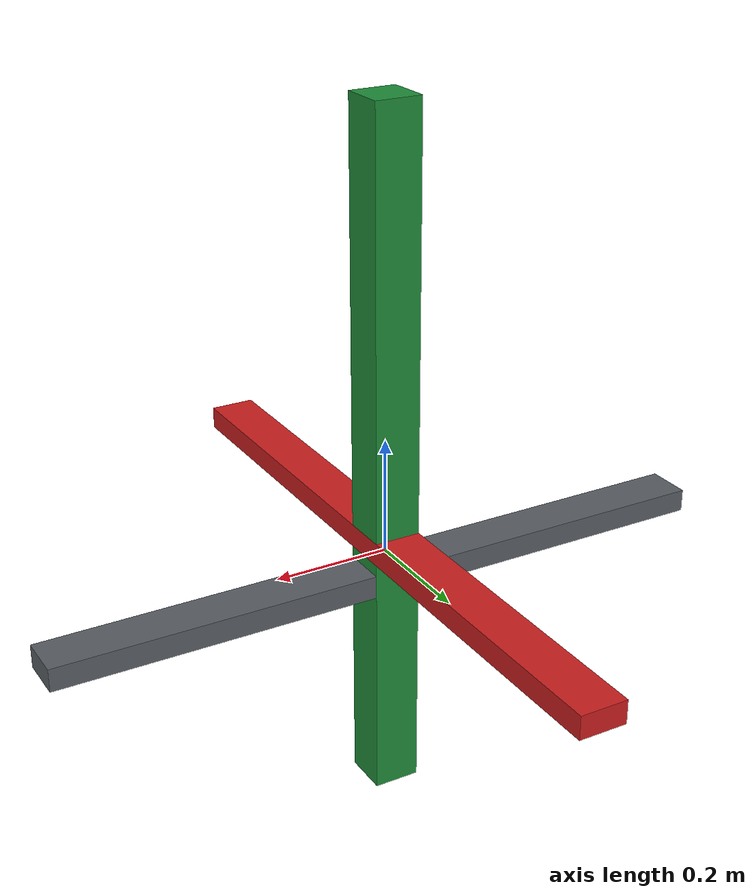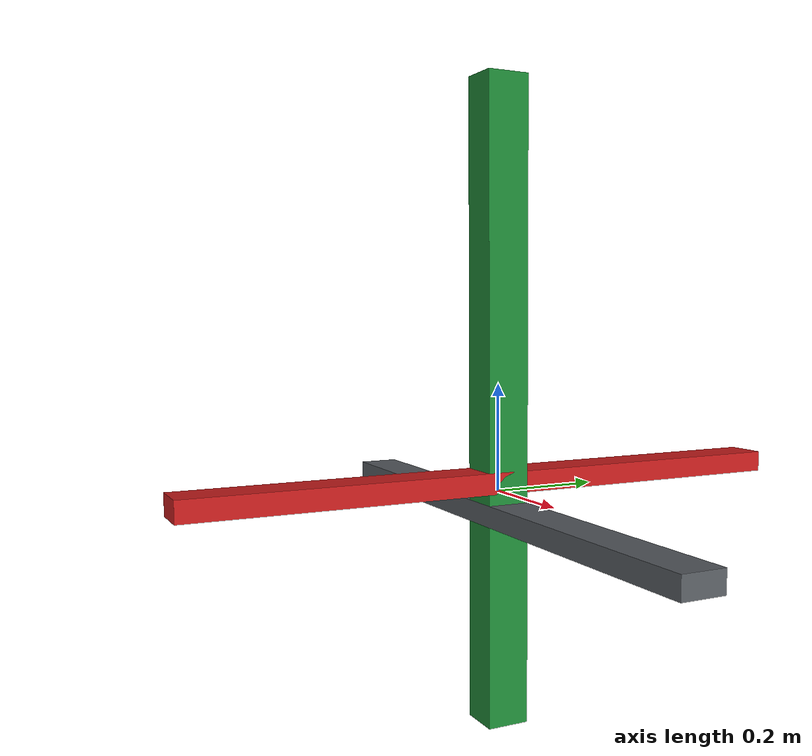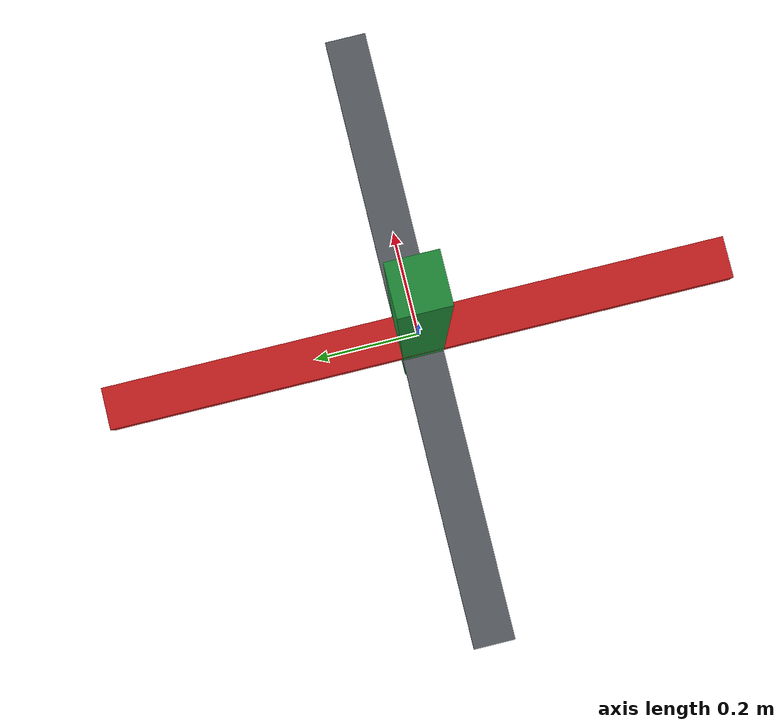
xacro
<?xml version="1.0"?>
<robot xmlns:xacro="http://www.ros.org/wiki/xacro" name="ros2_cia402_cartesian_3axis">
  <xacro:property name="rail_length" value="1.2"/>
  <xacro:property name="rail_thickness" value="0.04"/>
  <xacro:property name="carriage_size" value="0.08"/>
  <xacro:property name="tool_size" value="0.05"/>
  <xacro:property name="travel_min" value="-0.5"/>
  <xacro:property name="travel_max" value="0.5"/>
  <xacro:property name="velocity_limit" value="0.2"/>
  <xacro:property name="effort_limit" value="100.0"/>

  <material name="base_gray">
    <color rgba="0.35 0.37 0.39 1.0"/>
  </material>
  <material name="x_red">
    <color rgba="0.80 0.12 0.12 1.0"/>
  </material>
  <material name="y_green">
    <color rgba="0.12 0.55 0.22 1.0"/>
  </material>
  <material name="z_blue">
    <color rgba="0.12 0.28 0.85 1.0"/>
  </material>
  <material name="tool_dark">
    <color rgba="0.08 0.08 0.10 1.0"/>
  </material>

  <xacro:macro name="simple_inertial" params="mass">
    <inertial>
      <mass value="${mass}"/>
      <origin xyz="0 0 0" rpy="0 0 0"/>
      <inertia ixx="0.001" ixy="0.0" ixz="0.0" iyy="0.001" iyz="0.0" izz="0.001"/>
    </inertial>
  </xacro:macro>

  <link name="base_link">
    <visual>
      <origin xyz="0 0 -0.04" rpy="0 0 0"/>
      <geometry>
        <box size="${rail_length} 0.08 0.04"/>
      </geometry>
      <material name="base_gray"/>
    </visual>
    <collision>
      <origin xyz="0 0 -0.04" rpy="0 0 0"/>
      <geometry>
        <box size="${rail_length} 0.08 0.04"/>
      </geometry>
    </collision>
    <xacro:simple_inertial mass="5.0"/>
  </link>

  <link name="x_link">
    <visual>
      <origin xyz="0 0 0.02" rpy="0 0 0"/>
      <geometry>
        <box size="${carriage_size} ${rail_length} ${rail_thickness}"/>
      </geometry>
      <material name="x_red"/>
    </visual>
    <collision>
      <origin xyz="0 0 0.02" rpy="0 0 0"/>
      <geometry>
        <box size="${carriage_size} ${rail_length} ${rail_thickness}"/>
      </geometry>
    </collision>
    <xacro:simple_inertial mass="2.0"/>
  </link>

  <joint name="X" type="prismatic">
    <parent link="base_link"/>
    <child link="x_link"/>
    <origin xyz="0 0 0" rpy="0 0 0"/>
    <axis xyz="1 0 0"/>
    <limit lower="${travel_min}" upper="${travel_max}" effort="${effort_limit}" velocity="${velocity_limit}"/>
  </joint>

  <link name="y_link">
    <visual>
      <origin xyz="0 0 0.10" rpy="0 0 0"/>
      <geometry>
        <box size="${carriage_size} ${carriage_size} ${rail_length}"/>
      </geometry>
      <material name="y_green"/>
    </visual>
    <collision>
      <origin xyz="0 0 0.10" rpy="0 0 0"/>
      <geometry>
        <box size="${carriage_size} ${carriage_size} ${rail_length}"/>
      </geometry>
    </collision>
    <xacro:simple_inertial mass="1.5"/>
  </link>

  <joint name="Y" type="prismatic">
    <parent link="x_link"/>
    <child link="y_link"/>
    <origin xyz="0 0 0.06" rpy="0 0 0"/>
    <axis xyz="0 1 0"/>
    <limit lower="${travel_min}" upper="${travel_max}" effort="${effort_limit}" velocity="${velocity_limit}"/>
  </joint>

  <link name="tool0">
    <visual>
      <origin xyz="0 0 0" rpy="0 0 0"/>
      <geometry>
        <box size="${tool_size} ${tool_size} ${tool_size}"/>
      </geometry>
      <material name="tool_dark"/>
    </visual>
    <collision>
      <origin xyz="0 0 0" rpy="0 0 0"/>
      <geometry>
        <box size="${tool_size} ${tool_size} ${tool_size}"/>
      </geometry>
    </collision>
    <xacro:simple_inertial mass="0.5"/>
  </link>

  <joint name="Z" type="prismatic">
    <parent link="y_link"/>
    <child link="tool0"/>
    <origin xyz="0 0 0.10" rpy="0 0 0"/>
    <axis xyz="0 0 1"/>
    <limit lower="${travel_min}" upper="${travel_max}" effort="${effort_limit}" velocity="${velocity_limit}"/>
  </joint>
</robot>
